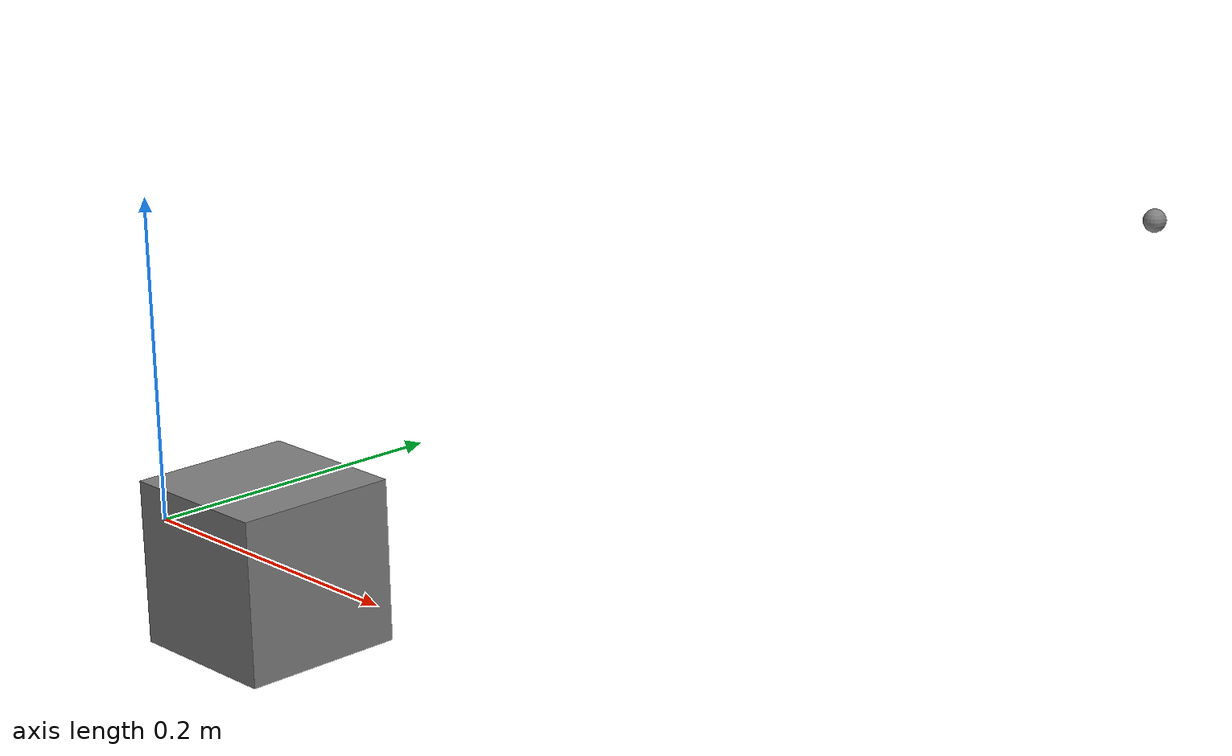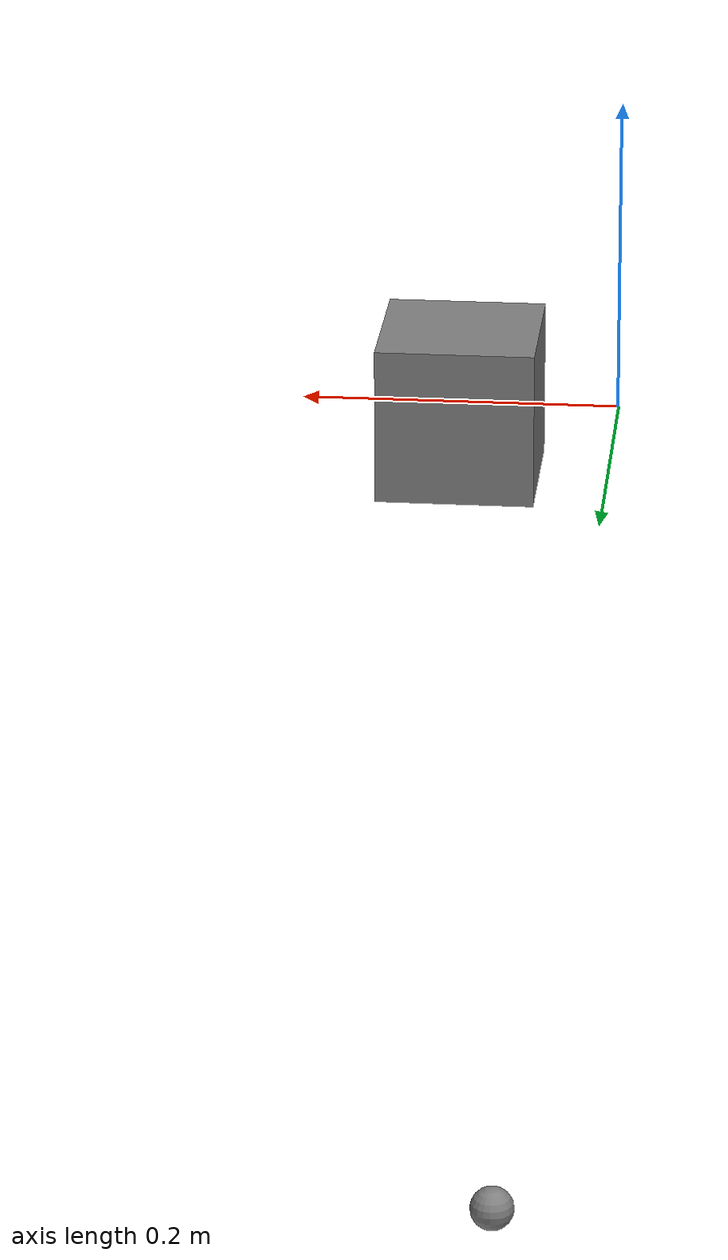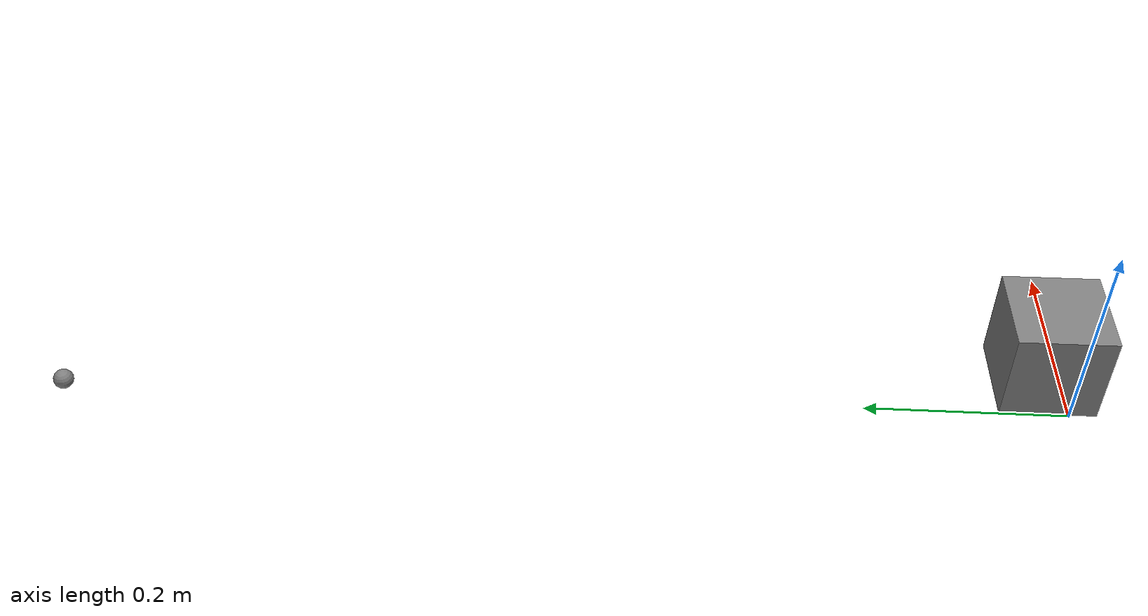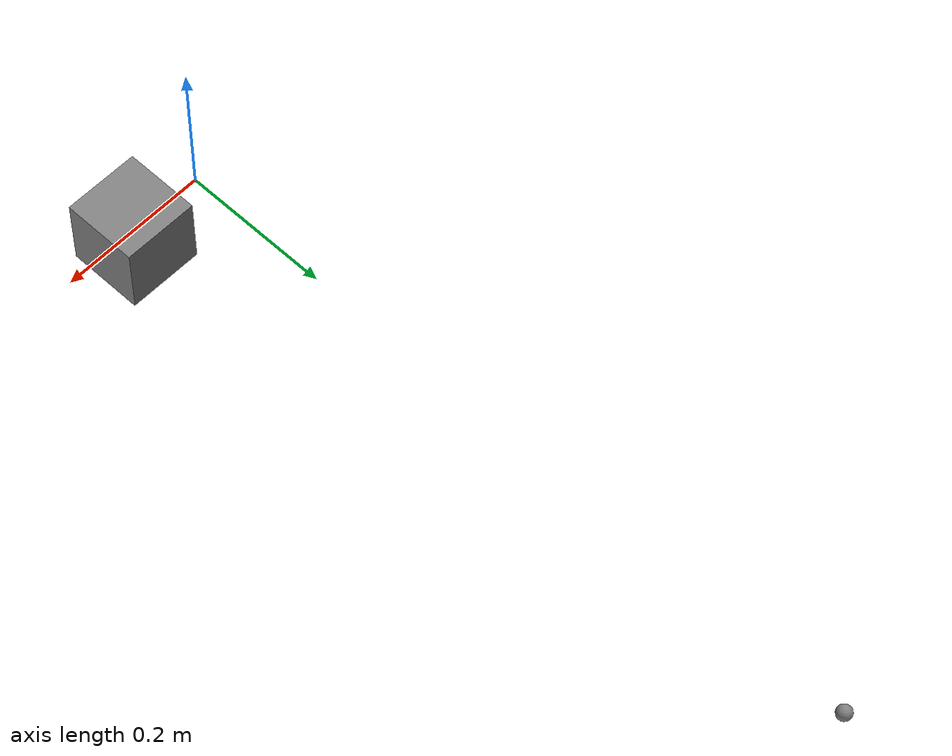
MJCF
<mujoco model="grip_ctrlrange">
  <!-- A one-joint arm whose gripper has a control range and no joint
       range, a joint no actuator drives, and two unnamed geoms that touch
       at rest. -->
  <compiler angle="radian"/>
  <option timestep="0.002" gravity="0 0 0"/>
  <worldbody>
    <body name="arm" pos="0 0 0">
      <joint name="j1" type="hinge" axis="0 0 1" range="-3.14 3.14"/>
      <geom type="box" size="0.05 0.05 0.05" pos="0.1 0 0" contype="1" conaffinity="1"/>
      <body name="end_effector" pos="0.1 0 0">
        <joint name="j_grip" type="slide" axis="0 1 0" damping="1.0"/>
        <geom type="box" size="0.01 0.01 0.01" contype="0" conaffinity="0"/>
      </body>
    </body>
    <body name="wall" pos="0.1 0 0">
      <geom type="box" size="0.05 0.05 0.05" contype="1" conaffinity="1"/>
    </body>
    <body name="idle" pos="0 1 0">
      <joint name="j_free" type="hinge" axis="0 0 1"/>
      <geom type="sphere" size="0.01" contype="0" conaffinity="0"/>
    </body>
  </worldbody>
  <actuator>
    <position name="a1" joint="j1" kp="50"/>
    <position name="a_grip" joint="j_grip" kp="100" ctrlrange="-0.02 0.03"/>
  </actuator>
</mujoco>
